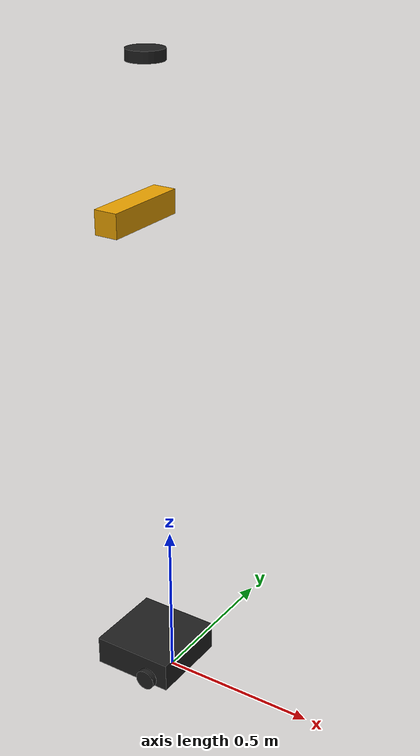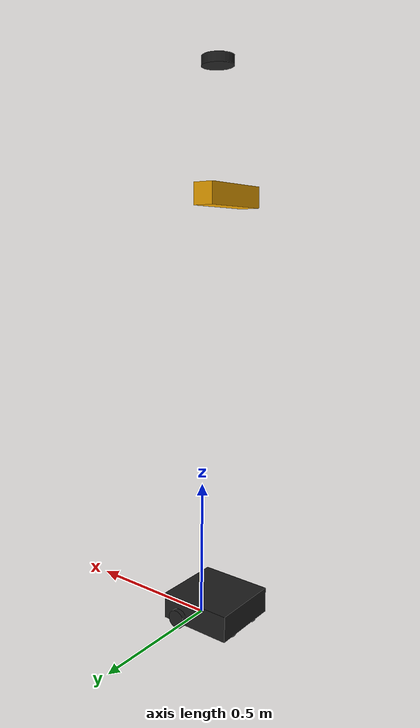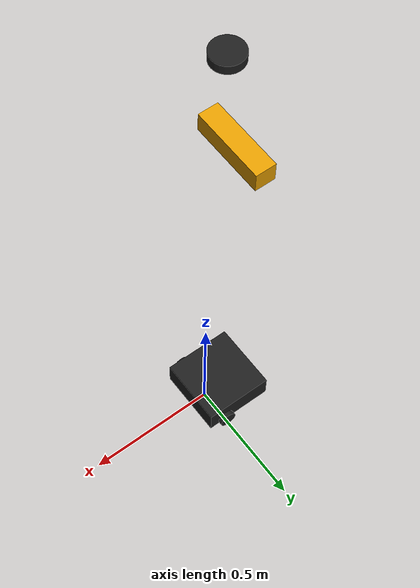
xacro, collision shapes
<?xml version="1.0" ?>
<robot name="turtlebot3_waffle_pi" xmlns:xacro="http://ros.org/wiki/xacro">
  <xacro:include filename="$(find turtlebot3_description)/urdf/common_properties.xacro"/>
  <xacro:include filename="$(find autonomous_robots)/urdf/2_turtlebot3_waffle_pi.gazebo.xacro"/>

  <link name="base_footprint"/>

  <joint name="base_joint" type="fixed">
    <parent link="base_footprint"/>
    <child link="base_link" />
    <origin xyz="0 0 0.010" rpy="0 0 0"/>
  </joint>

  <link name="base_link">
    <visual>
      <origin xyz="-0.064 0 0.0" rpy="0 0 0"/>
      <geometry>
        <mesh filename="package://turtlebot3_description/meshes/bases/waffle_pi_base.stl" scale="0.001 0.001 0.001"/>
      </geometry>
      <material name="light_black"/>
    </visual>

    <collision>
      <origin xyz="-0.064 0 0.047" rpy="0 0 0"/>
      <geometry>
        <box size="0.266 0.266 0.094"/>
      </geometry>
    </collision>

    <inertial>
      <origin xyz="0 0 0" rpy="0 0 0"/>
      <mass value="1.3729096e+00"/>
      <inertia ixx="8.7002718e-03" ixy="0.0" ixz="1.1160499e-04"
               iyy="0.0" iyz="0.0"
               izz="1.4612727e-02" />
    </inertial>
  </link>

  <joint name="wheel_left_joint" type="continuous">
    <parent link="base_link"/>
    <child link="wheel_left_link"/>
    <origin xyz="0.0 0.144 0.023" rpy="-1.57 0 0"/>
    <axis xyz="0 0 1"/>
  </joint>

  <link name="wheel_left_link">
    <visual>
      <origin xyz="0 0 0" rpy="1.57 0 0"/>
      <geometry>
        <mesh filename="package://turtlebot3_description/meshes/wheels/left_tire.stl" scale="0.001 0.001 0.001"/>
      </geometry>
      <material name="dark"/>
    </visual>

    <collision>
      <origin xyz="0 0 0" rpy="0 0 0"/>
      <geometry>
        <cylinder length="0.018" radius="0.033"/>
      </geometry>
    </collision>

    <inertial>
      <origin xyz="0 0 0" />
      <mass value="2.8498940e-02" />
      <inertia ixx="1.1175580e-05" ixy="-4.2369783e-11" ixz="-5.9381719e-09"
               iyy="1.1192413e-05" iyz="-1.4400107e-11"
               izz="2.0712558e-05" />
      </inertial>
  </link>

  <joint name="wheel_right_joint" type="continuous">
    <parent link="base_link"/>
    <child link="wheel_right_link"/>
    <origin xyz="0.0 -0.144 0.023" rpy="-1.57 0 0"/>
    <axis xyz="0 0 1"/>
  </joint>

  <link name="wheel_right_link">
    <visual>
      <origin xyz="0 0 0" rpy="1.57 0 0"/>
      <geometry>
        <mesh filename="package://turtlebot3_description/meshes/wheels/right_tire.stl" scale="0.001 0.001 0.001"/>
      </geometry>
      <material name="dark"/>
    </visual>

    <collision>
      <origin xyz="0 0 0" rpy="0 0 0"/>
      <geometry>
        <cylinder length="0.018" radius="0.033"/>
      </geometry>
    </collision>

    <inertial>
      <origin xyz="0 0 0" />
      <mass value="2.8498940e-02" />
      <inertia ixx="1.1175580e-05" ixy="-4.2369783e-11" ixz="-5.9381719e-09"
               iyy="1.1192413e-05" iyz="-1.4400107e-11"
               izz="2.0712558e-05" />
    </inertial>
  </link>

  <joint name="caster_back_right_joint" type="fixed">
    <parent link="base_link"/>
    <child link="caster_back_right_link"/>
    <origin xyz="-0.177 -0.064 -0.004" rpy="-1.57 0 0"/>
  </joint>

  <link name="caster_back_right_link">
    <collision>
      <origin xyz="0 0.001 0" rpy="0 0 0"/>
      <geometry>
        <box size="0.030 0.009 0.020"/>
      </geometry>
    </collision>

    <inertial>
      <origin xyz="0 0 0" />
      <mass value="0.005" />
      <inertia ixx="0.001" ixy="0.0" ixz="0.0"
               iyy="0.001" iyz="0.0"
               izz="0.001" />
    </inertial>
  </link>

  <joint name="caster_back_left_joint" type="fixed">
    <parent link="base_link"/>
    <child link="caster_back_left_link"/>
    <origin xyz="-0.177 0.064 -0.004" rpy="-1.57 0 0"/>
  </joint>

  <link name="caster_back_left_link">
    <collision>
      <origin xyz="0 0.001 0" rpy="0 0 0"/>
      <geometry>
        <box size="0.030 0.009 0.020"/>
      </geometry>
    </collision>

    <inertial>
      <origin xyz="0 0 0" />
      <mass value="0.005" />
      <inertia ixx="0.001" ixy="0.0" ixz="0.0"
               iyy="0.001" iyz="0.0"
               izz="0.001" />
    </inertial>
  </link>

  <joint name="imu_joint" type="fixed">
    <parent link="base_link"/>
    <child link="imu_link"/>
    <origin xyz="0.0 0 0.068" rpy="0 0 0"/>
  </joint>

  <link name="imu_link"/>

  <joint name="scan_joint" type="fixed">
    <parent link="base_link"/>
    <child link="base_scan"/>
    <origin xyz="-0.064 0 1.95" rpy="0 0 0"/>
  </joint>

  <link name="base_scan">
    <visual>
      <origin xyz="0 0 0.0" rpy="0 0 0"/>
      <geometry>
        <mesh filename="package://turtlebot3_description/meshes/sensors/lds.stl" scale="0.001 0.001 0.001"/>
      </geometry>
      <material name="dark"/>
    </visual>

    <collision>
      <origin xyz="0.015 0 -0.0065" rpy="0 0 0"/>
      <geometry>
        <cylinder length="0.0315" radius="0.055"/>
      </geometry>
    </collision>

    <inertial>
      <mass value="0.0" />
      <origin xyz="0 0 0" />
      <inertia ixx="0.00" ixy="0.0" ixz="0.0"
               iyy="0.00" iyz="0.0"
               izz="0.00" />
    </inertial>
  </link>

  <joint name="camera_joint" type="fixed">
    <origin xyz="-0.1 -0.01 1.5" rpy="0 0 0"/>
    <parent link="base_link"/>
    <child link="camera_link"/>
  </joint>

  <link name="camera_link">
    <collision>
      <origin xyz="0.005 0.011 0.013" rpy="0 0 0"/>
      <geometry>
        <box size="0.073000 0.276000 0.072000"/>
      </geometry>
    </collision>

    <inertial>
      <mass value="0.1"/>
      <origin xyz="0 0 0" rpy="0 0 0"/>
      <inertia ixx="1e-6" ixy="0" ixz="0" iyy="1e-6" iyz="0" izz="1e-6" />
    </inertial>

    <visual name="visual">
        <geometry>
          <mesh filename= "package://autonomous_robots/kinect/meshes/kinect.dae"/>
        </geometry>
    </visual>
  </link>

  <joint name="camera_rgb_joint" type="fixed">
    <origin xyz="0.003 0.011 0.009" rpy="0 0 0"/>
    <parent link="camera_link"/>
    <child link="camera_rgb_frame"/>
  </joint>
  <link name="camera_rgb_frame"/>

  <joint name="camera_rgb_optical_joint" type="fixed">
    <origin xyz="0 0 0" rpy="-1.57 0 -1.57"/>
    <parent link="camera_rgb_frame"/>
    <child link="camera_rgb_optical_frame"/>
  </joint>
  <link name="camera_rgb_optical_frame"/>

</robot>
